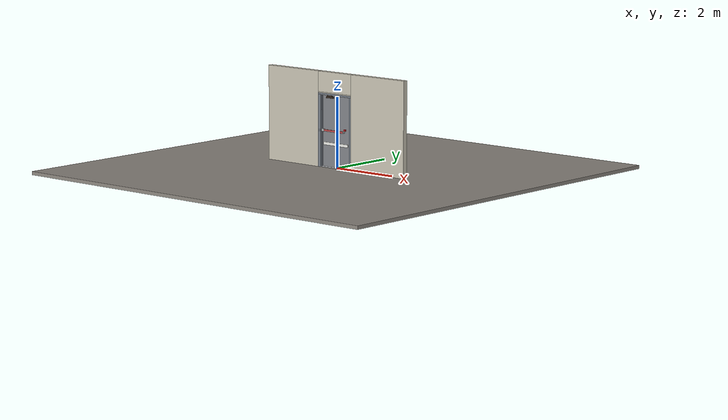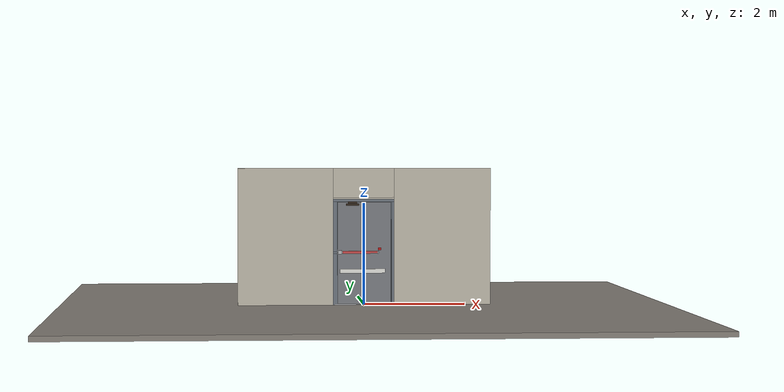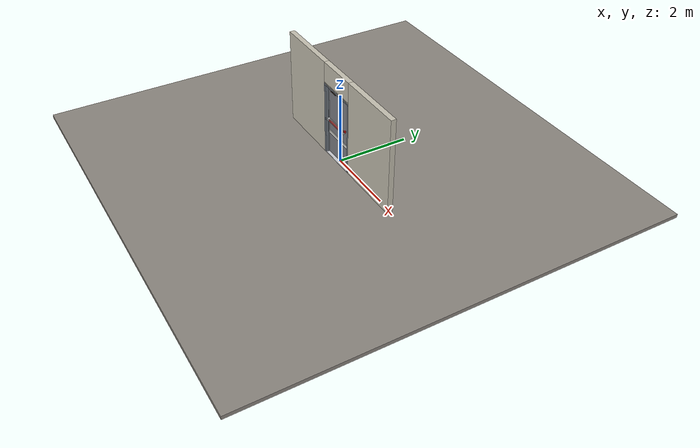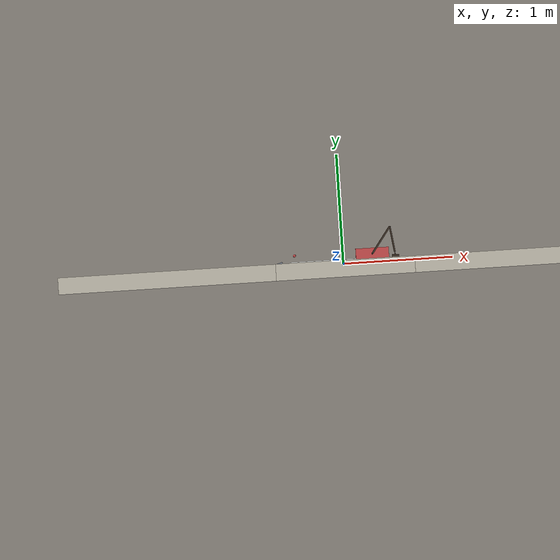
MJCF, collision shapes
<?xml version="1.0" ?>
<mujoco model="db0570_swing_single_full">
  <compiler angle="radian" meshdir="../../hardware" texturedir="../../textures" autolimits="true" inertiafromgeom="false"/>
  <option timestep="0.002" integrator="implicitfast" cone="elliptic" impratio="10" noslip_iterations="3">
    <flag multiccd="enable"/>
  </option>
  <size memory="16M"/>
  <default>
    <geom condim="4" solref="0.005 1" solimp="0.95 0.99 0.001"/>
    <joint solreflimit="0.005 1" solimplimit="0.95 0.99 0.001"/>
    <tendon solreflimit="0.005 1"/>
    <equality solref="0.002 1"/>
  </default>
  <visual>
    <headlight ambient="0.4 0.4 0.4" diffuse="0.7 0.7 0.7" specular="0.2 0.2 0.2"/>
    <quality shadowsize="4096"/>
    <map znear="0.01" zfar="60"/>
  </visual>
  <asset>
    <mesh name="closer_body_fdc4667657" file="closer_body_fdc4667657.obj"/>
    <mesh name="hinge_e22b26c0c1" file="hinge_e22b26c0c1.obj"/>
    <mesh name="hinge_jamb_e1d088f8dc" file="hinge_jamb_e1d088f8dc.obj"/>
    <mesh name="pull_f8d79d6331" file="pull_f8d79d6331.obj"/>
    <mesh name="touchbar_pad_53c3bea3f4" file="touchbar_pad_53c3bea3f4.obj"/>
    <material name="mat_floor" rgba="0.55 0.53 0.5 1" specular="0.2" shininess="0.15" reflectance="0"/>
    <material name="mat_wall" rgba="0.78 0.76 0.7 1" specular="0.2" shininess="0.1" reflectance="0"/>
    <material name="mat_leaf" rgba="0.5 0.51 0.53 1" specular="0.2" shininess="0.59" reflectance="0"/>
    <material name="mat_hinge" rgba="0.65 0.66 0.68 1" specular="0.74" shininess="0.5" reflectance="0.36"/>
    <material name="mat_op_stainless" rgba="0.75 0.76 0.77 1" specular="0.8" shininess="0.65" reflectance="0.4"/>
    <material name="mat_alarm" rgba="0.75 0.1 0.1 1" specular="0.2" shininess="0.5" reflectance="0"/>
    <material name="mat_bolt" rgba="0.75 0.76 0.77 1" specular="0.8" shininess="0.65" reflectance="0.4"/>
    <material name="mat_maglock" rgba="0.22 0.17 0.13 1" specular="0.8" shininess="0.6" reflectance="0.4"/>
    <material name="mat_frame" rgba="0.45 0.48 0.52 1" specular="0.32" shininess="0.6" reflectance="0.08"/>
    <material name="mat_threshold" rgba="0.8 0.81 0.83 1" specular="0.8" shininess="0.6" reflectance="0.4"/>
    <material name="mat_closer" rgba="0.22 0.17 0.13 1" specular="0.8" shininess="0.6" reflectance="0.4"/>
    <material name="mat_bumper" rgba="0.92 0.92 0.9 1" specular="0.2" shininess="0.6" reflectance="0"/>
    <texture name="skybox" type="skybox" builtin="gradient" rgb1="0.6 0.7 0.85" rgb2="0.9 0.92 0.95" width="256" height="256"/>
  </asset>
  <worldbody>
    <light name="sun" pos="1.5 -2.5 4" dir="-0.3 0.5 -0.8" directional="true" diffuse="0.8 0.8 0.8" specular="0.3 0.3 0.3" castshadow="true"/>
    <light name="fill" pos="-1.5 2.5 3" dir="0.3 -0.5 -0.7" directional="true" diffuse="0.35 0.35 0.4" castshadow="false"/>
    <camera name="robot_view" pos="0 -2.585687 1.734312" xyaxes="1 0 0 0 0.26963 0.962964" fovy="52"/>
    <camera name="far_view" pos="0 2.498687 1.734312" xyaxes="-1 0 0 0 -0.26963 0.962964" fovy="52"/>
    <camera name="iso" pos="-1.932062 -2.178937 2.141063" xyaxes="0.741536 -0.670913 0 0.242917 0.268487 0.932151" fovy="46"/>
    <camera name="detail_handle" pos="-0.263 -0.703 1.32" xyaxes="0.97561 0.219512 0 -0.070934 0.315262 0.94635" fovy="38"/>
    <geom name="floor" type="box" size="6 6 0.05" pos="0 0 -0.05" material="mat_floor" group="0" contype="1" conaffinity="1" friction="0.8 0.005 0.0001" density="2400"/>
    <geom name="wall_left" type="box" size="0.9415 0.0725 1.35" pos="-1.5585 -0.0435 1.35" material="mat_wall" group="0" contype="1" conaffinity="1" friction="0.6 0.005 0.0001" density="800"/>
    <geom name="wall_right" type="box" size="0.9565 0.0725 1.35" pos="1.5435 -0.0435 1.35" material="mat_wall" group="0" contype="1" conaffinity="1" friction="0.6 0.005 0.0001" density="800"/>
    <geom name="wall_header" type="box" size="0.602 0.0725 0.2875" pos="-0.015 -0.0435 2.4125" material="mat_wall" group="0" contype="1" conaffinity="1" friction="0.6 0.005 0.0001" density="800"/>
    <geom name="hinge_0_jamb" type="mesh" mesh="hinge_jamb_e1d088f8dc" pos="0.534 0.029 0.267" quat="0 0 0 1" material="mat_hinge" group="1" contype="0" conaffinity="0" density="7850"/>
    <geom name="hinge_1_jamb" type="mesh" mesh="hinge_jamb_e1d088f8dc" pos="0.534 0.029 1.029" quat="0 0 0 1" material="mat_hinge" group="1" contype="0" conaffinity="0" density="7850"/>
    <geom name="hinge_2_jamb" type="mesh" mesh="hinge_jamb_e1d088f8dc" pos="0.534 0.029 1.861" quat="0 0 0 1" material="mat_hinge" group="1" contype="0" conaffinity="0" density="7850"/>
    <geom name="leaf_maglock_body" type="box" size="0.125 0.025 0.02" pos="-0.233 -0.057 1.98" material="mat_maglock" group="0" contype="1" conaffinity="1" friction="0.6 0.005 0.0001" density="2000"/>
    <geom name="leaf_maglock_bracket" type="box" size="0.09 0.025 0.0225" pos="-0.233 -0.057 2.0225" material="mat_maglock" group="1" contype="0" conaffinity="0" density="7850"/>
    <geom name="jamb_hinge" type="box" size="0.025 0.0725 1.0225" pos="0.562 -0.0435 1.0225" material="mat_frame" group="0" contype="1" conaffinity="1" friction="0.6 0.005 0.0001" density="300"/>
    <geom name="strike_1040_wall_n" type="box" size="0.04 0.0305 0.02" pos="-0.577 -0.0855 1.04" material="mat_frame" group="0" contype="1" conaffinity="1" friction="0.6 0.005 0.0001" density="300"/>
    <geom name="strike_1040_wall_p" type="box" size="0.04 0.008 0.02" pos="-0.577 -0.025 1.04" material="mat_frame" group="0" contype="1" conaffinity="1" friction="0.6 0.005 0.0001" density="300"/>
    <geom name="strike_1040_ramp" type="box" size="0.04 0.034482 0.02" pos="-0.585281 0.0044 1.04" quat="0.989198 0 0 0.146587" material="mat_frame" group="0" contype="1" conaffinity="1" friction="0.12 0.005 0.0001" density="300"/>
    <geom name="strike_1040_back" type="box" size="0.0285 0.011 0.02" pos="-0.5885 -0.044 1.04" material="mat_frame" group="0" contype="1" conaffinity="1" friction="0.6 0.005 0.0001" density="300"/>
    <geom name="jamb_strike_0" type="box" size="0.04 0.0725 0.51" pos="-0.577 -0.0435 0.51" material="mat_frame" group="0" contype="1" conaffinity="1" friction="0.6 0.005 0.0001" density="300"/>
    <geom name="jamb_strike_1" type="box" size="0.04 0.0725 0.4925" pos="-0.577 -0.0435 1.5525" material="mat_frame" group="0" contype="1" conaffinity="1" friction="0.6 0.005 0.0001" density="300"/>
    <geom name="jamb_head" type="box" size="0.602 0.0725 0.025" pos="-0.015 -0.0435 2.07" material="mat_frame" group="0" contype="1" conaffinity="1" friction="0.6 0.005 0.0001" density="300"/>
    <geom name="head_stud" type="box" size="0.602 0.0725 0.015" pos="-0.015 -0.0435 2.11" material="mat_wall" group="0" contype="1" conaffinity="1" friction="0.6 0.005 0.0001" density="500"/>
    <geom name="stop_hinge" type="box" size="0.0055 0.016 1.0225" pos="0.5315 -0.0385 1.0225" material="mat_frame" group="0" contype="1" conaffinity="1" friction="0.6 0.005 0.0001" density="300"/>
    <geom name="stop_strike" type="box" size="0.0055 0.016 0.49625" pos="-0.5315 -0.0385 0.49625" material="mat_frame" group="0" contype="1" conaffinity="1" friction="0.6 0.005 0.0001" density="300"/>
    <geom name="stop_strike_1" type="box" size="0.0055 0.016 0.47875" pos="-0.5315 -0.0385 1.56625" material="mat_frame" group="0" contype="1" conaffinity="1" friction="0.6 0.005 0.0001" density="300"/>
    <geom name="stop_head" type="box" size="0.537 0.016 0.0055" pos="0 -0.0385 2.0395" material="mat_frame" group="0" contype="1" conaffinity="1" friction="0.6 0.005 0.0001" density="300"/>
    <geom name="threshold" type="box" size="0.587 0.0725 0.0065" pos="0 -0.0435 0.0065" material="mat_threshold" group="0" contype="1" conaffinity="1" friction="0.5 0.005 0.0001" density="2700"/>
    <geom name="closer_bracket" type="box" size="0.03 0.012 0.014" pos="0.437 0.041 2.075" material="mat_closer" group="1" contype="0" conaffinity="0" density="2700"/>
    <site name="approach_point" pos="0 -1.5 0" quat="1 0 0 0" size="0.05" rgba="0.2 0.9 0.2 0.5" group="4"/>
    <site name="goal_point" pos="0 1.5 0" quat="1 0 0 0" size="0.05" rgba="0.2 0.9 0.2 0.5" group="4"/>
    <site name="door_plane_center" pos="0 0 1.0225" quat="1 0 0 0" size="0.02" rgba="0.2 0.9 0.2 0.5" group="4"/>
    <body name="leaf" pos="0.537 0 0">
      <inertial pos="-0.503405 0.013735 1.199342" mass="58.317532" quat="-0.480989 -0.457893 -0.527186 0.53015" diaginertia="5.116994024 22.858925899 27.853565984"/>
      <joint name="leaf_hinge" type="hinge" axis="0 0 -1" pos="-0.003 0.029 0" limited="true" range="0 1.745329" damping="12.475663" frictionloss="0.367822" stiffness="12.694198" springref="-2.580707" armature="0.02"/>
      <geom name="leaf_slab" type="box" size="0.5335 0.022 1.012" pos="-0.5365 0 1.029" material="mat_leaf" group="0" contype="1" conaffinity="1" friction="0.4 0.005 0.0001" density="1"/>
      <geom name="hinge_0" type="mesh" mesh="hinge_e22b26c0c1" pos="-0.003 0.029 0.267" quat="0 0 0 1" material="mat_hinge" group="1" contype="0" conaffinity="0" density="7850"/>
      <geom name="hinge_1" type="mesh" mesh="hinge_e22b26c0c1" pos="-0.003 0.029 1.029" quat="0 0 0 1" material="mat_hinge" group="1" contype="0" conaffinity="0" density="7850"/>
      <geom name="hinge_2" type="mesh" mesh="hinge_e22b26c0c1" pos="-0.003 0.029 1.861" quat="0 0 0 1" material="mat_hinge" group="1" contype="0" conaffinity="0" density="7850"/>
      <geom name="leaf_exit_device_rail" type="box" size="0.366775 0.006 0.025" pos="-0.623225 -0.028 1.04" material="mat_op_stainless" group="0" contype="1" conaffinity="1" friction="0.6 0.005 0.0001" density="3000"/>
      <geom name="leaf_exit_device_rail_end_n" type="box" size="0.01 0.0325 0.025" pos="-0.98 -0.0545 1.04" material="mat_op_stainless" group="0" contype="1" conaffinity="1" friction="0.6 0.005 0.0001" density="3000"/>
      <geom name="leaf_exit_device_rail_end_p" type="box" size="0.01 0.0325 0.025" pos="-0.26645 -0.0545 1.04" material="mat_op_stainless" group="0" contype="1" conaffinity="1" friction="0.6 0.005 0.0001" density="3000"/>
      <geom name="leaf_exit_device_case" type="box" size="0.034 0.034125 0.0375" pos="-1.024 -0.056125 1.04" material="mat_op_stainless" group="0" contype="1" conaffinity="1" friction="0.6 0.005 0.0001" density="3000"/>
      <geom name="leaf_exit_device_alarm" type="box" size="0.03 0.02 0.025" pos="-0.23145 -0.042 1.1" material="mat_alarm" group="1" contype="0" conaffinity="0" density="1500"/>
      <geom name="leaf_far_pull_p" type="mesh" mesh="pull_f8d79d6331" pos="-0.98 0.022 1.04" quat="0 0 0.707107 0.707107" material="mat_op_stainless" group="1" contype="0" conaffinity="0" density="3000"/>
      <geom name="leaf_far_pull_col_p" type="capsule" size="0.0125 0.13" pos="-0.98 0.097 1.04" material="mat_op_stainless" group="3" contype="1" conaffinity="1" rgba="0.8 0.3 0.3 0.25" friction="0.7 0.01 0.0001" density="3000"/>
      <geom name="leaf_maglock_armature" type="box" size="0.09 0.005 0.02" pos="-0.77 -0.027 1.98" material="mat_maglock" group="1" contype="0" conaffinity="0" density="7800"/>
      <geom name="closer_body" type="mesh" mesh="closer_body_fdc4667657" pos="-0.3 0.022 1.944" quat="0 0 0.707107 0.707107" material="mat_closer" group="1" contype="0" conaffinity="0" density="2000"/>
      <geom name="closer_body_col" type="box" size="0.145 0.05 0.035" pos="-0.3 0.072 1.944" material="mat_closer" group="3" contype="1" conaffinity="1" rgba="0.8 0.3 0.3 0.25" friction="0.6 0.005 0.0001" density="2000"/>
      <geom name="closer_pinion_shaft" type="cylinder" size="0.008 0.0655" pos="-0.3 0.072 2.0095" material="mat_closer" group="1" contype="0" conaffinity="0" density="2700"/>
      <geom name="bumper_rail_n" type="box" size="0.4485 0.01 0.04" pos="-0.5715 -0.032 0.667" material="mat_bumper" group="0" contype="1" conaffinity="1" friction="0.6 0.005 0.0001" density="1200"/>
      <geom name="bumper_rail_p" type="box" size="0.4485 0.01 0.04" pos="-0.5715 0.032 0.667" material="mat_bumper" group="0" contype="1" conaffinity="1" friction="0.6 0.005 0.0001" density="1200"/>
      <site name="leaf_far_pull_grip_p" pos="-0.98 0.097 1.04" quat="1 0 0 0" size="0.012" rgba="0.2 0.9 0.2 0.5" group="4"/>
      <site name="leaf_edge_mid" pos="-1.07 0 1.012" quat="1 0 0 0" size="0.02" rgba="0.2 0.9 0.2 0.5" group="4"/>
      <body name="leaf_exit_device" pos="-0.623225 -0.022 1.04">
        <inertial pos="0 -0.05 0" mass="5.569155" quat="0.707107 0.707107 0 0" diaginertia="0.001357482 0.219807588 0.220329696"/>
        <joint name="leaf_exit_device_slide" type="slide" axis="0 1 0" limited="true" range="0 0.016" damping="165.686282" frictionloss="0.5" stiffness="1200" springref="-0.015" armature="0.15"/>
        <geom name="leaf_exit_device_pad" type="mesh" mesh="touchbar_pad_53c3bea3f4" pos="0 0 0" quat="0 0 -0.707107 0.707107" material="mat_op_stainless" group="1" contype="0" conaffinity="0" density="3000"/>
        <geom name="leaf_exit_device_pad_col" type="box" size="0.343775 0.015 0.0225" pos="0 -0.05 0" material="mat_op_stainless" group="3" contype="1" conaffinity="1" rgba="0.8 0.3 0.3 0.25" friction="0.8 0.01 0.0001" density="3000"/>
        <site name="leaf_exit_device_push" pos="0 -0.065 0" quat="1 0 0 0" size="0.015" rgba="0.2 0.9 0.2 0.5" group="4"/>
      </body>
      <body name="leaf_latch_bolt" pos="-1.07 -0.044 1.04">
        <inertial pos="0.0055 0 0" mass="0.102826" quat="0.92388 0.382683 0 0" diaginertia="0.000004365 0.000018287 0.000018287"/>
        <joint name="leaf_latch_bolt_slide" type="slide" axis="1 0 0" limited="true" range="0 0.019" damping="2" frictionloss="0.3" stiffness="800" springref="-0.01" armature="0.1"/>
        <geom name="leaf_latch_bolt_capsule" type="capsule" size="0.0095 0.015" pos="0.0055 0 0" quat="0.707107 0 -0.707107 0" material="mat_bolt" group="0" contype="1" conaffinity="1" friction="0.2 0.005 0.0001" density="8500"/>
      </body>
      <body name="closer_arm_main" pos="-0.3 0.072 2.075" quat="0.890947 0 0 0.454107">
        <inertial pos="0.14 0 0" mass="0.12096" quat="1 0 0 0" diaginertia="0.000003588 0.00079128 0.000792852"/>
        <joint name="closer_pinion" type="hinge" axis="0 0 1" limited="false" damping="0.01" armature="0.002"/>
        <geom name="closer_arm_main_geom" type="box" size="0.14 0.008 0.005" pos="0.14 0 0" material="mat_closer" group="1" contype="0" conaffinity="0" density="2700"/>
        <body name="closer_arm_fore" pos="0.28 0 0" quat="0.373215 0 0 -0.927745">
          <inertial pos="0.128088 0 0" mass="0.076531" quat="1 0 0 0" diaginertia="0.000001771 0.000437665 0.000438201"/>
          <joint name="closer_elbow" type="hinge" axis="0 0 1" limited="false" damping="0.01" armature="0.002"/>
          <geom name="closer_arm_fore_geom" type="box" size="0.1125 0.007 0.004" pos="0.1125 0 0" material="mat_closer" group="1" contype="0" conaffinity="0" density="2700"/>
          <geom name="closer_fore_neck" type="box" size="0.0175 0.003 0.003" pos="0.2425 0 0" material="mat_closer" group="1" contype="0" conaffinity="0" density="2700"/>
          <geom name="closer_fore_pivot" type="cylinder" size="0.005 0.012" pos="0.26 0 0" material="mat_closer" group="1" contype="0" conaffinity="0" density="2700"/>
        </body>
      </body>
    </body>
  </worldbody>
  <tendon>
    <fixed name="leaf_latch_bolt_coupling" limited="true" range="0 10">
      <joint joint="leaf_latch_bolt_slide" coef="1"/>
      <joint joint="leaf_exit_device_slide" coef="-1.357143"/>
    </fixed>
  </tendon>
  <equality>
    <weld name="leaf_maglock" body1="leaf" body2="world" active="true"/>
    <connect name="closer_arm_connect" body1="closer_arm_fore" body2="world" anchor="0.26 0 0" active="true"/>
  </equality>
  <contact>
    <exclude body1="closer_arm_main" body2="leaf"/>
    <exclude body1="closer_arm_fore" body2="leaf"/>
    <exclude body1="closer_arm_main" body2="closer_arm_fore"/>
  </contact>
  <sensor>
    <jointpos name="leaf_hinge_pos" joint="leaf_hinge"/>
    <jointvel name="leaf_hinge_vel" joint="leaf_hinge"/>
    <jointpos name="leaf_exit_device_slide_pos" joint="leaf_exit_device_slide"/>
    <jointvel name="leaf_exit_device_slide_vel" joint="leaf_exit_device_slide"/>
    <jointpos name="leaf_latch_bolt_slide_pos" joint="leaf_latch_bolt_slide"/>
    <jointvel name="leaf_latch_bolt_slide_vel" joint="leaf_latch_bolt_slide"/>
  </sensor>
</mujoco>
